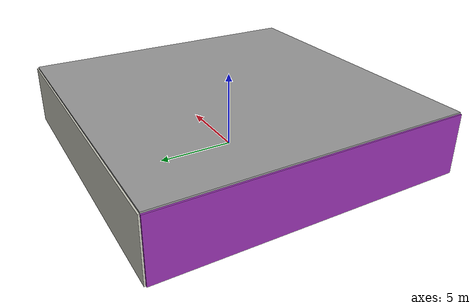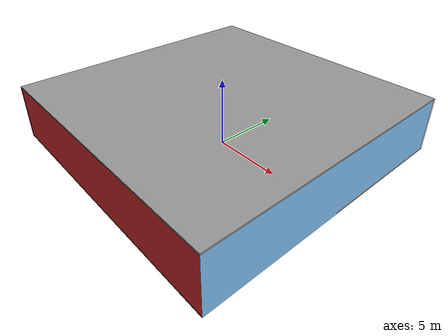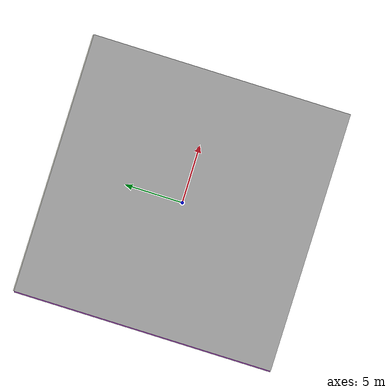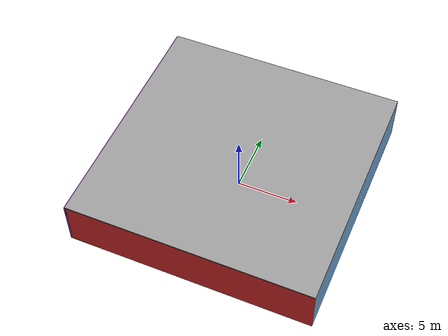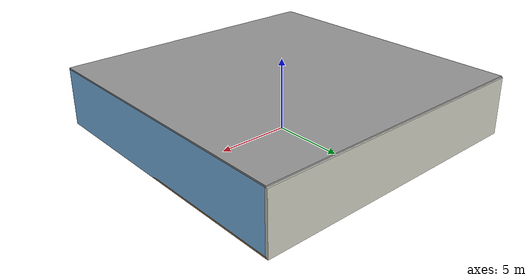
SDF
<sdf version="1.4">
 <world name="default">
  <physics type="ode">
   <max_step_size>0.001</max_step_size>
   <real_time_factor>1</real_time_factor>
   <real_time_update_rate>1000</real_time_update_rate>
   <gravity>0 0 -9.8</gravity>
  </physics>
  <scene><ambient>0.4 0.4 0.4 1</ambient><background>0.7 0.7 0.7 1</background><shadows>1</shadows></scene>
  <model name="Surrounding">
   <static>1</static>
   <link name="Ceiling">
    <collision name="Ceiling_Collision"><geometry><box><size>20 20 0.1</size></box></geometry></collision>
    <visual name="Ceiling_Visual">
     <geometry><box><size>20 20 0.1</size></box></geometry>
     <material>
      <script><uri>file://media/materials/scripts/gazebo.material</uri><name>Gazebo/Grey</name></script>
     </material>
    </visual>
    <pose>0 0 4.05 0 0 0</pose>
   </link>
   <link name="Wall_South">
    <collision name="Wall_South_Collision">
     <geometry><box><size>20 0 4</size></box></geometry>
     <pose>0 0 2 0 -0 0</pose>
    </collision>
    <visual name="Wall_South_Visual">
     <pose>0 0 2 0 -0 0</pose>
     <geometry><box><size>20 0 4</size></box></geometry>
     <material>
      <script><uri>file://media/materials/scripts/gazebo.material</uri><name>Gazebo/Red</name></script>
     </material>
    </visual>
    <velocity_decay><linear>0</linear><angular>0</angular></velocity_decay>
    <pose>0 -10 0 0 -0 0</pose>
   </link>
   <link name="Wall_East">
    <collision name="Wall_21_Collision">
     <geometry><box><size>20 0 4</size></box></geometry>
     <pose>0 0 2 0 -0 0</pose>
    </collision>
    <visual name="Wall_21_Visual">
     <pose>0 0 2 0 -0 0</pose>
     <geometry><box><size>20 0 4</size></box></geometry>
     <material>
      <script><uri>file://media/materials/scripts/gazebo.material</uri><name>Gazebo/SkyBlue</name></script>
     </material>
    </visual>
    <velocity_decay><linear>0</linear><angular>0</angular></velocity_decay>
    <pose>10 0 0 0 -0 1.5708</pose>
   </link>
   <link name="Wall_North">
    <collision name="Wall_22_Collision">
     <geometry><box><size>20 0.2 4</size></box></geometry>
     <pose>0 0 2 0 -0 0</pose>
    </collision>
    <visual name="Wall_22_Visual">
     <pose>0 0 2 0 -0 0</pose>
     <geometry><box><size>20 0.2 4</size></box></geometry>
     <material>
      <script><uri>file://media/materials/scripts/gazebo.material</uri><name>Gazebo/PaintedWall</name></script>
     </material>
    </visual>
    <velocity_decay><linear>0</linear><angular>0</angular></velocity_decay>
    <pose>0 10 0 0 -0 0</pose>
   </link>
   <link name="Wall_West">
    <collision name="Wall_23_Collision">
     <geometry><box><size>20 0.2 4</size></box></geometry>
     <pose>0 0 2 0 -0 0</pose>
    </collision>
    <visual name="Wall_23_Visual">
     <pose>0 0 2 0 -0 0</pose>
     <geometry><box><size>20 0.2 4</size></box></geometry>
     <material>
      <script><uri>file://media/materials/scripts/gazebo.material</uri><name>Gazebo/PurpleGlow</name></script>
     </material>
    </visual>
    <velocity_decay><linear>0</linear><angular>0</angular></velocity_decay>
    <pose>-10 0 0 0 0 -1.5708</pose>
   </link>
   <link name="Ground_link">
    <collision name="collision">
     <pose>0 0 .05 0 -0 0</pose>
     <geometry><box><size>20 20 0.1</size></box></geometry>
    </collision>
    <visual name="visual">
     <pose>0 0 .05 0 -0 0</pose>
     <geometry><box><size>20 20 0.1</size></box></geometry>
     <material>
      <script><uri>file://media/materials/scripts/gazebo.material</uri><name>Gazebo/WoodPallet</name></script>
     </material>
    </visual>
   </link>
   <static>1</static>
  </model>
  <spherical_coordinates>
   <surface_model>EARTH_WGS84</surface_model>
   <latitude_deg>0</latitude_deg>
   <longitude_deg>0</longitude_deg>
   <elevation>0</elevation>
   <heading_deg>0</heading_deg>
  </spherical_coordinates>
  <light name="lightball_0" type="diffuse">
   <diffuse>0.8 0.8 0.8 1</diffuse>
   <specular>0.2 0.2 0.2 1</specular>
   <attenuation>
    <range>100</range>
    <constant>0.7</constant>
    <linear>0.01</linear>
    <quadratic>0.001</quadratic>
   </attenuation>
   <direction>-0.5 0.1 -0.9</direction>
   <pose>8.6533899914 -8.77371587327 3.3408088432 0 0 0</pose>
  </light>
  <light name="lightball_1" type="diffuse">
   <diffuse>0.8 0.8 0.8 1</diffuse>
   <specular>0.2 0.2 0.2 1</specular>
   <attenuation>
    <range>100</range>
    <constant>0.7</constant>
    <linear>0.01</linear>
    <quadratic>0.001</quadratic>
   </attenuation>
   <direction>-0.5 0.1 -0.9</direction>
   <pose>0.80269153053 -5.74868278393 2.69273905422 0 0 0</pose>
  </light>
  <light name="lightball_2" type="diffuse">
   <diffuse>0.8 0.8 0.8 1</diffuse>
   <specular>0.2 0.2 0.2 1</specular>
   <attenuation>
    <range>100</range>
    <constant>0.7</constant>
    <linear>0.01</linear>
    <quadratic>0.001</quadratic>
   </attenuation>
   <direction>-0.5 0.1 -0.9</direction>
   <pose>6.62363609332 1.2771812564 3.07720402708 0 0 0</pose>
  </light>
  <light name="lightball_3" type="diffuse">
   <diffuse>0.8 0.8 0.8 1</diffuse>
   <specular>0.2 0.2 0.2 1</specular>
   <attenuation>
    <range>100</range>
    <constant>0.7</constant>
    <linear>0.01</linear>
    <quadratic>0.001</quadratic>
   </attenuation>
   <direction>-0.5 0.1 -0.9</direction>
   <pose>-0.290317293611 5.78775947454 3.38547532608 0 0 0</pose>
  </light>
  <light name="lightball_4" type="diffuse">
   <diffuse>0.8 0.8 0.8 1</diffuse>
   <specular>0.2 0.2 0.2 1</specular>
   <attenuation>
    <range>100</range>
    <constant>0.7</constant>
    <linear>0.01</linear>
    <quadratic>0.001</quadratic>
   </attenuation>
   <direction>-0.5 0.1 -0.9</direction>
   <pose>5.36341021376 -3.54535672036 3.77248525844 0 0 0</pose>
  </light>
  <light name="lightball_5" type="diffuse">
   <diffuse>0.8 0.8 0.8 1</diffuse>
   <specular>0.2 0.2 0.2 1</specular>
   <attenuation>
    <range>100</range>
    <constant>0.7</constant>
    <linear>0.01</linear>
    <quadratic>0.001</quadratic>
   </attenuation>
   <direction>-0.5 0.1 -0.9</direction>
   <pose>-1.94226907635 4.2504964114 3.32275797239 0 0 0</pose>
  </light>
  <light name="lightball_6" type="diffuse">
   <diffuse>0.8 0.8 0.8 1</diffuse>
   <specular>0.2 0.2 0.2 1</specular>
   <attenuation>
    <range>100</range>
    <constant>0.7</constant>
    <linear>0.01</linear>
    <quadratic>0.001</quadratic>
   </attenuation>
   <direction>-0.5 0.1 -0.9</direction>
   <pose>-3.88913209083 -3.34992246713 3.67538196309 0 0 0</pose>
  </light>
  <include>
   <uri>model://textured_shapes</uri>
   <pose>-7.55708714126 -7.59805609485 0 0 0 0.358026632538</pose>
  </include>
  <include>
   <uri>model://robocup_3Dsim_goal</uri>
   <pose>-7.71004410104 -4.71527277639 0 0 0 2.07040846798</pose>
  </include>
  <include><uri>model://cabinet</uri><pose>-1.13598773616 1.86720954411 0 0 0 1.1444578292</pose></include>
 </world>
</sdf>

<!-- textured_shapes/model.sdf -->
<sdf version="1.6">
  <model name="textured_shapes">
    <pose>0 0 0.5 0 0 0</pose>
    <link name="box">
      <pose>0 -1.5 0 0 0 0</pose>
      <collision name="collision">
        <geometry>
          <box>
            <size>1 1 1</size>
          </box>
        </geometry>
      </collision>
      <visual name="visual">
        <geometry>
          <box>
            <size>1 1 1</size>
          </box>
        </geometry>
        <material>
          <script>
            <uri>model://../model_source/models/textured_shapes/materials/scripts</uri>
            <uri>model://../model_source/models/textured_shapes/materials/textures</uri>
            <name>TexturedShape/Squares</name>
          </script>
        </material>
      </visual>
    </link>
    <link name="sphere">
      <collision name="collision">
        <geometry>
          <sphere>
            <radius>0.5</radius>
          </sphere>
        </geometry>
      </collision>
      <visual name="visual">
        <geometry>
          <sphere>
            <radius>0.5</radius>
          </sphere>
        </geometry>
        <material>
          <script>
            <uri>model://../model_source/models/textured_shapes/materials/scripts</uri>
            <uri>model://../model_source/models/textured_shapes/materials/textures</uri>
            <name>TexturedShape/Squares</name>
          </script>
        </material>
      </visual>
    </link>
    <link name="cylinder">
      <pose>0 1.5 0 0 0 0</pose>
      <collision name="collision">
        <geometry>
          <cylinder>
            <radius>0.5</radius>
            <length>1</length>
          </cylinder>
        </geometry>
      </collision>
      <visual name="visual">
        <geometry>
          <cylinder>
            <radius>0.5</radius>
            <length>1</length>
          </cylinder>
        </geometry>
        <material>
          <script>
            <uri>model://../model_source/models/textured_shapes/materials/scripts</uri>
            <uri>model://../model_source/models/textured_shapes/materials/textures</uri>
            <name>TexturedShape/Squares</name>
          </script>
        </material>
      </visual>
    </link>
  </model>
</sdf>

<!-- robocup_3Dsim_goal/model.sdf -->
<sdf version="1.5">
  <model name="robocup_3d_goal">
    <static>true</static>
    <link name="left_post">
      <pose>0 1.05 0.45 0 0 0</pose>
      <collision name="collision">
        <geometry>
          <cylinder>
            <radius>0.05</radius>
            <length>0.9</length>
          </cylinder>
        </geometry>
      </collision>
      <visual name="visual">
        <geometry>
          <cylinder>
            <radius>0.05</radius>
            <length>0.9</length>
          </cylinder>
        </geometry>
        <material>
          <script>
            <uri>file://media/materials/scripts/gazebo.material</uri>
            <name>Gazebo/ZincYellow</name>
          </script>
        </material>
      </visual>
    </link>
    <link name="left_support_horiz_lower">
      <pose>0.30 1.05 0.01 0 0 0</pose>
      <collision name="collision">
        <geometry>
          <box>
            <size>0.50 0.02 0.02</size>
          </box>
        </geometry>
      </collision>
      <visual name="visual">
        <geometry>
          <box>
            <size>0.50 0.02 0.02</size>
          </box>
        </geometry>
        <material>
          <script>
            <uri>file://media/materials/scripts/gazebo.material</uri>
            <name>Gazebo/White</name>
          </script>
        </material>
      </visual>
    </link>
    <link name="left_support_horiz_upper">
      <pose>0.30 1.05 0.79 0 0 0</pose>
      <collision name="collision">
        <geometry>
          <box>
            <size>0.50 0.02 0.02</size>
          </box>
        </geometry>
      </collision>
      <visual name="visual">
        <geometry>
          <box>
            <size>0.50 0.02 0.02</size>
          </box>
        </geometry>
        <material>
          <script>
            <uri>file://media/materials/scripts/gazebo.material</uri>
            <name>Gazebo/White</name>
          </script>
        </material>
      </visual>
    </link>
    <link name="left_support_vertical">
      <pose>0.56 1.05 0.4 0 1.5708 0</pose>
      <collision name="collision">
        <geometry>
          <box>
            <size>0.80 0.02 0.02</size>
          </box>
        </geometry>
      </collision>
      <visual name="visual">
        <geometry>
          <box>
            <size>0.80 0.02 0.02</size>
          </box>
        </geometry>
        <material>
          <script>
            <uri>file://media/materials/scripts/gazebo.material</uri>
            <name>Gazebo/White</name>
          </script>
        </material>
      </visual>
    </link>
    <link name="right_support_horiz_lower">
      <pose>0.30 -1.05 0.01 0 0 0</pose>
      <collision name="collision">
        <geometry>
          <box>
            <size>0.50 0.02 0.02</size>
          </box>
        </geometry>
      </collision>
      <visual name="visual">
        <geometry>
          <box>
            <size>0.50 0.02 0.02</size>
          </box>
        </geometry>
        <material>
          <script>
            <uri>file://media/materials/scripts/gazebo.material</uri>
            <name>Gazebo/White</name>
          </script>
        </material>
      </visual>
    </link>
    <link name="right_support_horiz_upper">
      <pose>0.30 -1.05 0.79 0 0 0</pose>
      <collision name="collision">
        <geometry>
          <box>
            <size>0.50 0.02 0.02</size>
          </box>
        </geometry>
      </collision>
      <visual name="visual">
        <geometry>
          <box>
            <size>0.50 0.02 0.02</size>
          </box>
        </geometry>
        <material>
          <script>
            <uri>file://media/materials/scripts/gazebo.material</uri>
            <name>Gazebo/White</name>
          </script>
        </material>
      </visual>
    </link>
    <link name="right_support_vertical">
      <pose>0.56 -1.05 0.4 0 1.5708 0</pose>
      <collision name="collision">
        <geometry>
          <box>
            <size>0.80 0.02 0.02</size>
          </box>
        </geometry>
      </collision>
      <visual name="visual">
        <geometry>
          <box>
            <size>0.80 0.02 0.02</size>
          </box>
        </geometry>
        <material>
          <script>
            <uri>file://media/materials/scripts/gazebo.material</uri>
            <name>Gazebo/White</name>
          </script>
        </material>
      </visual>
    </link>
    <link name="center_support_horiz_lower">
      <pose>0.56 0 0.01 0 1.5708 0</pose>
      <collision name="collision">
        <geometry>
          <box>
            <size>0.02 2.08 0.02</size>
          </box>
        </geometry>
      </collision>
      <visual name="visual">
        <geometry>
          <box>
            <size>0.02 2.08 0.02</size>
          </box>
        </geometry>
        <material>
          <script>
            <uri>file://media/materials/scripts/gazebo.material</uri>
            <name>Gazebo/White</name>
          </script>
        </material>
      </visual>
    </link>
    <link name="center_support_horiz_upper">
      <pose>0.56 0 0.79 0 1.5708 0</pose>
      <collision name="collision">
        <geometry>
          <box>
            <size>0.02 2.08 0.02</size>
          </box>
        </geometry>
      </collision>
      <visual name="visual">
        <geometry>
          <box>
            <size>0.02 2.08 0.02</size>
          </box>
        </geometry>
        <material>
          <script>
            <uri>file://media/materials/scripts/gazebo.material</uri>
            <name>Gazebo/White</name>
          </script>
        </material>
      </visual>
    </link>
    <link name="right_post">
      <pose>0 -1.05 0.45 0 0 0</pose>
      <collision name="collision">
        <geometry>
          <cylinder>
            <radius>0.05</radius>
            <length>0.9</length>
          </cylinder>
        </geometry>
      </collision>
      <visual name="visual">
        <geometry>
          <cylinder>
            <radius>0.05</radius>
            <length>0.9</length>
          </cylinder>
        </geometry>
        <material>
          <script>
            <uri>file://media/materials/scripts/gazebo.material</uri>
            <name>Gazebo/ZincYellow</name>
          </script>
        </material>
      </visual>
    </link>
    <link name="crossbar">
      <pose>0 0 0.85 1.57 1.57 0</pose>
      <collision name="collision">
        <geometry>
          <cylinder>
            <radius>0.05</radius>
            <length>2.0</length>
          </cylinder>
        </geometry>
      </collision>
      <visual name="visual">
        <geometry>
          <cylinder>
            <radius>0.05</radius>
            <length>2.0</length>
          </cylinder>
        </geometry>
        <material>
          <script>
            <uri>file://media/materials/scripts/gazebo.material</uri>
            <name>Gazebo/ZincYellow</name>
          </script>
        </material>
      </visual>
    </link>
    <link name="center_net">
      <pose>0.56 0 0.40 0 0 0</pose>
      <collision name="collision">
        <geometry>
          <box>
            <size>0.01 2.1 0.80</size>
          </box>
        </geometry>
      </collision>
      <visual name="visual">
        <geometry>
          <box>
            <size>0.01 2.1 0.80</size>
          </box>
        </geometry>
        <material>
          <script>
            <uri>model://../model_source/models/robocup09_spl_field/materials/scripts/</uri>
            <uri>model://../model_source/models/robocup09_spl_field/materials/textures/</uri>
            <name>RoboCup/Net</name>
          </script>
        </material>
      </visual>
    </link>
    <link name="left_net">
      <pose>0.30 1.05 0.40 0 0 0</pose>
      <collision name="collision">
        <geometry>
          <box>
            <size>0.50 0.01 0.76</size>
          </box>
        </geometry>
      </collision>
      <visual name="visual">
        <geometry>
          <box>
            <size>0.50 0.01 0.76</size>
          </box>
        </geometry>
        <material>
          <script>
            <uri>model://../model_source/models/robocup09_spl_field/materials/scripts/</uri>
            <uri>model://../model_source/models/robocup09_spl_field/materials/textures/</uri>
            <name>RoboCup/Net</name>
          </script>
        </material>
      </visual>
    </link>
    <link name="right_net">
      <pose>0.30 -1.05 0.40 0 0 0</pose>
      <collision name="collision">
        <geometry>
          <box>
            <size>0.50 0.01 0.76</size>
          </box>
        </geometry>
      </collision>
      <visual name="visual">
        <geometry>
          <box>
            <size>0.50 0.01 0.76</size>
          </box>
        </geometry>
        <material>
          <script>
            <uri>model://../model_source/models/robocup09_spl_field/materials/scripts/</uri>
            <uri>model://../model_source/models/robocup09_spl_field/materials/textures/</uri>
            <name>RoboCup/Net</name>
          </script>
        </material>
      </visual>
    </link>
  </model>
</sdf>

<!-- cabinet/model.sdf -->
<sdf version="1.5">
  <model name="cabinet">
    <static>true</static>
    <link name="cabinet_bottom_plate">
      <inertial>
        <pose>0 0 -1 0 0 0</pose>
        <inertia>
          <ixx>2.050000</ixx>
          <ixy>0</ixy>
          <ixz>0</ixz>
          <iyy>2.050000</iyy>
          <iyz>0</iyz>
          <izz>2.050000</izz>
        </inertia>
        <mass>25.000000</mass>
      </inertial>
      <collision name="cabinet_bottom_plate_geom">
        <pose>0 0 0.010000 0 0 0</pose>
        <geometry>
          <box>
            <size>0.450000 0.450000 0.020000</size>
          </box>
        </geometry>
      </collision>
      <visual name="cabinet_bottom_plate_geom_visual">
        <pose>0 0 0.010000 0 0 0</pose>
        <geometry>
          <box>
            <size>0.450000 0.450000 0.020000</size>
          </box>
        </geometry>
        <material>
          <script>
            <uri>model://media/materials/scripts/gazebo.material</uri>
            <name>Gazebo/Wood</name>
          </script>
        </material>
      </visual>
      <collision name="cabinet_bottom_plate_geom_cabinet_back_plate">
        <pose>0.235000 0 0.510000 0 0 0</pose>
        <geometry>
          <box>
            <size>0.020000 0.450000 1.020000</size>
          </box>
        </geometry>
      </collision>
      <visual name="cabinet_bottom_plate_geom_cabinet_back_plate_visual">
        <pose>0.235000 0 0.510000 0 0 0</pose>
        <geometry>
          <box>
            <size>0.020000 0.450000 1.020000</size>
          </box>
        </geometry>
        <material>
          <script>
            <uri>model://media/materials/scripts/gazebo.material</uri>
            <name>Gazebo/Wood</name>
          </script>
        </material>
      </visual>
      <collision name="cabinet_bottom_plate_geom_cabinet_left_plate">
        <pose>0 0.235000 0.510000 0 0 0</pose>
        <geometry>
          <box>
            <size>0.450000 0.020000 1.020000</size>
          </box>
        </geometry>
      </collision>
      <visual name="cabinet_bottom_plate_geom_cabinet_left_plate_visual">
        <pose>0 0.235000 0.510000 0 0 0</pose>
        <geometry>
          <box>
            <size>0.450000 0.020000 1.020000</size>
          </box>
        </geometry>
        <material>
          <script>
            <uri>model://media/materials/scripts/gazebo.material</uri>
            <name>Gazebo/Wood</name>
          </script>
        </material>
      </visual>
      <collision name="cabinet_bottom_plate_geom_cabinet_middle_plate">
        <pose>0 0 0.510000 0 0 0</pose>
        <geometry>
          <box>
            <size>0.450000 0.450000 0.020000</size>
          </box>
        </geometry>
      </collision>
      <visual name="cabinet_bottom_plate_geom_cabinet_middle_plate_visual">
        <pose>0 0 0.510000 0 0 0</pose>
        <geometry>
          <box>
            <size>0.450000 0.450000 0.020000</size>
          </box>
        </geometry>
        <material>
          <script>
            <uri>model://media/materials/scripts/gazebo.material</uri>
            <name>Gazebo/Wood</name>
          </script>
        </material>
      </visual>
      <collision name="cabinet_bottom_plate_geom_cabinet_right_plate">
        <pose>0 -0.235000 0.510000 0 0 0</pose>
        <geometry>
          <box>
            <size>0.450000 0.020000 1.020000</size>
          </box>
        </geometry>
      </collision>
      <visual name="cabinet_bottom_plate_geom_cabinet_right_plate_visual">
        <pose>0 -0.235000 0.510000 0 0 0</pose>
        <geometry>
          <box>
            <size>0.450000 0.020000 1.020000</size>
          </box>
        </geometry>
        <material>
          <script>
            <uri>model://media/materials/scripts/gazebo.material</uri>
            <name>Gazebo/Wood</name>
          </script>
        </material>
      </visual>
      <collision name="cabinet_bottom_plate_geom_cabinet_top_plate">
        <pose>0 0 1.010000 0 0 0</pose>
        <geometry>
          <box>
            <size>0.450000 0.450000 0.020000</size>
          </box>
        </geometry>
      </collision>
      <visual name="cabinet_bottom_plate_geom_cabinet_top_plate_visual">
        <pose>0 0 1.010000 0 0 0</pose>
        <geometry>
          <box>
            <size>0.450000 0.450000 0.020000</size>
          </box>
        </geometry>
        <material>
          <script>
            <uri>model://media/materials/scripts/gazebo.material</uri>
            <name>Gazebo/Wood</name>
          </script>
        </material>
      </visual>
    </link>
  </model>
</sdf>
